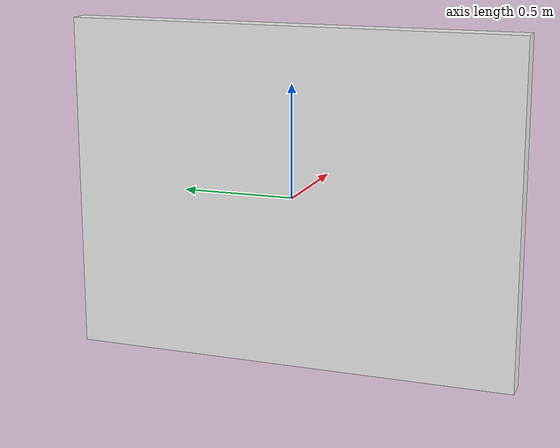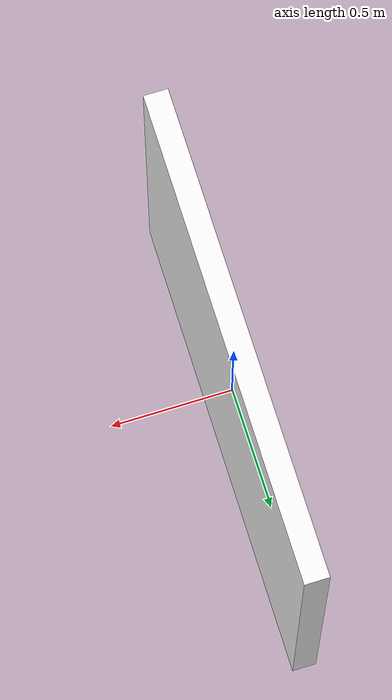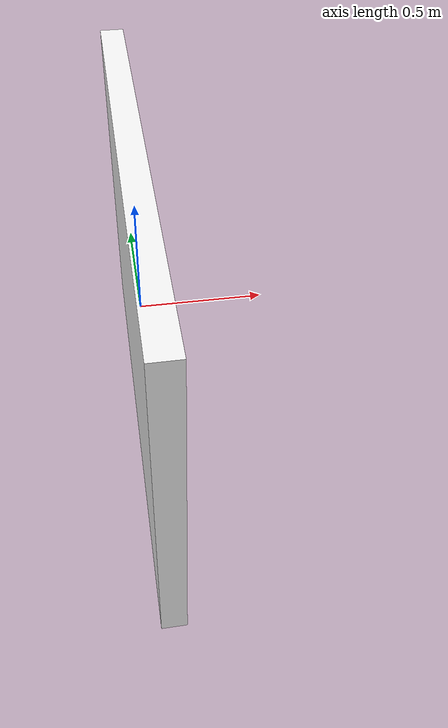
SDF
<?xml version="1.0" ?>
<sdf version="1.8">
  <model name="wall">
    <static>true</static>

    <link name="link">

      <collision name="collision">
        <geometry>
          <box><size>0.1 2.0 1.5</size></box>
        </geometry>
        <surface>
          <friction>
            <ode>
              <mu>0.8</mu>
              <mu2>0.8</mu2>
            </ode>
          </friction>
        </surface>
      </collision>

      <visual name="visual">
        <geometry>
          <box><size>0.1 2.0 1.5</size></box>
        </geometry>
        <material>
          <ambient>0.95 0.95 0.95 1</ambient>
          <diffuse>0.95 0.95 0.95 1</diffuse>
          <specular>0.05 0.05 0.05 1</specular>
        </material>
      </visual>

    </link>
  </model>
</sdf>
